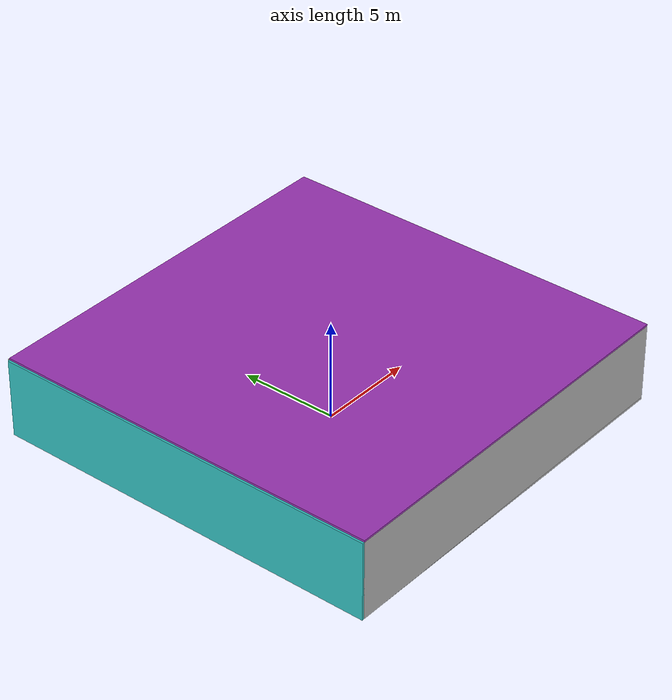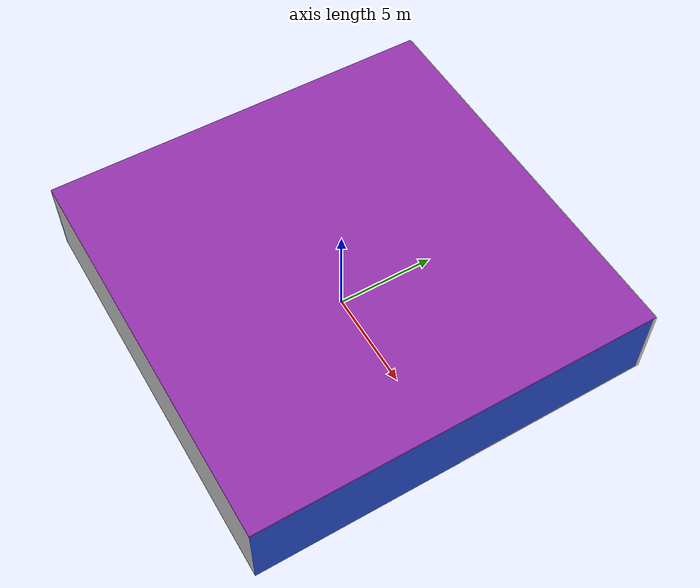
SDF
<sdf version="1.4">
 <world name="default">
  <physics type="ode">
   <max_step_size>0.001</max_step_size>
   <real_time_factor>1</real_time_factor>
   <real_time_update_rate>1000</real_time_update_rate>
   <gravity>0 0 -9.8</gravity>
  </physics>
  <scene><ambient>0.4 0.4 0.4 1</ambient><background>0.7 0.7 0.7 1</background><shadows>1</shadows></scene>
  <model name="Surrounding">
   <static>1</static>
   <link name="Ceiling">
    <collision name="Ceiling_Collision"><geometry><box><size>20 20 0.1</size></box></geometry></collision>
    <visual name="Ceiling_Visual">
     <geometry><box><size>20 20 0.1</size></box></geometry>
     <material>
      <script><uri>file://media/materials/scripts/gazebo.material</uri><name>Gazebo/Purple</name></script>
     </material>
    </visual>
    <pose>0 0 4.05 0 0 0</pose>
   </link>
   <link name="Wall_South">
    <collision name="Wall_South_Collision">
     <geometry><box><size>20 0 4</size></box></geometry>
     <pose>0 0 2 0 -0 0</pose>
    </collision>
    <visual name="Wall_South_Visual">
     <pose>0 0 2 0 -0 0</pose>
     <geometry><box><size>20 0 4</size></box></geometry>
     <material>
      <script><uri>file://media/materials/scripts/gazebo.material</uri><name>Gazebo/PioneerBody</name></script>
     </material>
    </visual>
    <velocity_decay><linear>0</linear><angular>0</angular></velocity_decay>
    <pose>0 -10 0 0 -0 0</pose>
   </link>
   <link name="Wall_East">
    <collision name="Wall_21_Collision">
     <geometry><box><size>20 0 4</size></box></geometry>
     <pose>0 0 2 0 -0 0</pose>
    </collision>
    <visual name="Wall_21_Visual">
     <pose>0 0 2 0 -0 0</pose>
     <geometry><box><size>20 0 4</size></box></geometry>
     <material>
      <script><uri>file://media/materials/scripts/gazebo.material</uri><name>Gazebo/BlueGlow</name></script>
     </material>
    </visual>
    <velocity_decay><linear>0</linear><angular>0</angular></velocity_decay>
    <pose>10 0 0 0 -0 1.5708</pose>
   </link>
   <link name="Wall_North">
    <collision name="Wall_22_Collision">
     <geometry><box><size>20 0.2 4</size></box></geometry>
     <pose>0 0 2 0 -0 0</pose>
    </collision>
    <visual name="Wall_22_Visual">
     <pose>0 0 2 0 -0 0</pose>
     <geometry><box><size>20 0.2 4</size></box></geometry>
     <material>
      <script><uri>file://media/materials/scripts/gazebo.material</uri><name>Gazebo/PaintedWall</name></script>
     </material>
    </visual>
    <velocity_decay><linear>0</linear><angular>0</angular></velocity_decay>
    <pose>0 10 0 0 -0 0</pose>
   </link>
   <link name="Wall_West">
    <collision name="Wall_23_Collision">
     <geometry><box><size>20 0.2 4</size></box></geometry>
     <pose>0 0 2 0 -0 0</pose>
    </collision>
    <visual name="Wall_23_Visual">
     <pose>0 0 2 0 -0 0</pose>
     <geometry><box><size>20 0.2 4</size></box></geometry>
     <material>
      <script><uri>file://media/materials/scripts/gazebo.material</uri><name>Gazebo/TurquoiseGlow</name></script>
     </material>
    </visual>
    <velocity_decay><linear>0</linear><angular>0</angular></velocity_decay>
    <pose>-10 0 0 0 0 -1.5708</pose>
   </link>
   <link name="Ground_link">
    <collision name="collision">
     <pose>0 0 .05 0 -0 0</pose>
     <geometry><box><size>20 20 0.1</size></box></geometry>
    </collision>
    <visual name="visual">
     <pose>0 0 .05 0 -0 0</pose>
     <geometry><box><size>20 20 0.1</size></box></geometry>
     <material>
      <script><uri>file://media/materials/scripts/gazebo.material</uri><name>Gazebo/PioneerBody</name></script>
     </material>
    </visual>
   </link>
   <static>1</static>
  </model>
  <spherical_coordinates>
   <surface_model>EARTH_WGS84</surface_model>
   <latitude_deg>0</latitude_deg>
   <longitude_deg>0</longitude_deg>
   <elevation>0</elevation>
   <heading_deg>0</heading_deg>
  </spherical_coordinates>
  <light name="lightball_0" type="diffuse">
   <diffuse>0.8 0.8 0.8 1</diffuse>
   <specular>0.2 0.2 0.2 1</specular>
   <attenuation>
    <range>100</range>
    <constant>0.7</constant>
    <linear>0.01</linear>
    <quadratic>0.001</quadratic>
   </attenuation>
   <direction>-0.5 0.1 -0.9</direction>
   <pose>1.87752384663 -6.5530298665 2.59787566042 0 0 0</pose>
  </light>
  <light name="lightball_1" type="diffuse">
   <diffuse>0.8 0.8 0.8 1</diffuse>
   <specular>0.2 0.2 0.2 1</specular>
   <attenuation>
    <range>100</range>
    <constant>0.7</constant>
    <linear>0.01</linear>
    <quadratic>0.001</quadratic>
   </attenuation>
   <direction>-0.5 0.1 -0.9</direction>
   <pose>2.14348653918 2.90718740739 1.56462664897 0 0 0</pose>
  </light>
  <light name="lightball_2" type="diffuse">
   <diffuse>0.8 0.8 0.8 1</diffuse>
   <specular>0.2 0.2 0.2 1</specular>
   <attenuation>
    <range>100</range>
    <constant>0.7</constant>
    <linear>0.01</linear>
    <quadratic>0.001</quadratic>
   </attenuation>
   <direction>-0.5 0.1 -0.9</direction>
   <pose>7.44987680226 -9.21964045145 1.70975339228 0 0 0</pose>
  </light>
  <light name="lightball_3" type="diffuse">
   <diffuse>0.8 0.8 0.8 1</diffuse>
   <specular>0.2 0.2 0.2 1</specular>
   <attenuation>
    <range>100</range>
    <constant>0.7</constant>
    <linear>0.01</linear>
    <quadratic>0.001</quadratic>
   </attenuation>
   <direction>-0.5 0.1 -0.9</direction>
   <pose>-9.29923938209 -7.85655158318 1.65049884437 0 0 0</pose>
  </light>
  <light name="lightball_4" type="diffuse">
   <diffuse>0.8 0.8 0.8 1</diffuse>
   <specular>0.2 0.2 0.2 1</specular>
   <attenuation>
    <range>100</range>
    <constant>0.7</constant>
    <linear>0.01</linear>
    <quadratic>0.001</quadratic>
   </attenuation>
   <direction>-0.5 0.1 -0.9</direction>
   <pose>0.994139010014 -5.47295430264 1.23284685113 0 0 0</pose>
  </light>
  <light name="lightball_5" type="diffuse">
   <diffuse>0.8 0.8 0.8 1</diffuse>
   <specular>0.2 0.2 0.2 1</specular>
   <attenuation>
    <range>100</range>
    <constant>0.7</constant>
    <linear>0.01</linear>
    <quadratic>0.001</quadratic>
   </attenuation>
   <direction>-0.5 0.1 -0.9</direction>
   <pose>-2.4220583832 -3.50200167048 0.593623802561 0 0 0</pose>
  </light>
  <light name="lightball_6" type="diffuse">
   <diffuse>0.8 0.8 0.8 1</diffuse>
   <specular>0.2 0.2 0.2 1</specular>
   <attenuation>
    <range>100</range>
    <constant>0.7</constant>
    <linear>0.01</linear>
    <quadratic>0.001</quadratic>
   </attenuation>
   <direction>-0.5 0.1 -0.9</direction>
   <pose>-8.06185334165 6.23790354199 1.59840969384 0 0 0</pose>
  </light>
  <light name="lightball_7" type="diffuse">
   <diffuse>0.8 0.8 0.8 1</diffuse>
   <specular>0.2 0.2 0.2 1</specular>
   <attenuation>
    <range>100</range>
    <constant>0.7</constant>
    <linear>0.01</linear>
    <quadratic>0.001</quadratic>
   </attenuation>
   <direction>-0.5 0.1 -0.9</direction>
   <pose>4.24976268926 8.13290674115 2.37316878941 0 0 0</pose>
  </light>
  <light name="lightball_8" type="diffuse">
   <diffuse>0.8 0.8 0.8 1</diffuse>
   <specular>0.2 0.2 0.2 1</specular>
   <attenuation>
    <range>100</range>
    <constant>0.7</constant>
    <linear>0.01</linear>
    <quadratic>0.001</quadratic>
   </attenuation>
   <direction>-0.5 0.1 -0.9</direction>
   <pose>-8.55331771508 7.1406509373 1.22489406621 0 0 0</pose>
  </light>
  <include><uri>model://table</uri><pose>-7.24096976567 -4.59871401858 0 0 0 1.20606793679</pose></include>
  <include><uri>model://cabinet</uri><pose>-7.16962604723 1.40088798096 0 0 0 3.03444770951</pose></include>
  <include><uri>model://cabinet</uri><pose>-7.03093340584 5.44270992732 0 0 0 2.46584587508</pose></include>
  <include>
   <uri>model://robocup_3Dsim_goal</uri>
   <pose>-0.522115282536 -7.97264016038 0 0 0 1.51679022517</pose>
  </include>
  <include>
   <uri>model://textured_shapes</uri>
   <pose>0.730211313688 -0.736389699383 0 0 0 2.35028607686</pose>
  </include>
  <include>
   <uri>model://construction_cone</uri>
   <pose>2.11663761431 0.799649189105 0 0 0 0.891005037913</pose>
  </include>
  <include>
   <uri>model://construction_cone</uri>
   <pose>4.15211311053 2.30077303549 0 0 0 1.51103902968</pose>
  </include>
  <include><uri>model://cabinet</uri><pose>7.84984942478 6.77205067889 0 0 0 1.66758967632</pose></include>
 </world>
</sdf>

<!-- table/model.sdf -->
<sdf version="1.5">
  <model name="table">
    <static>true</static>
    <link name="link">
      <collision name="surface">
        <pose>0 0 1.0 0 0 0</pose>
        <geometry>
          <box>
            <size>1.5 0.8 0.03</size>
          </box>
        </geometry>
        <surface>
          <friction>
            <ode>
              <mu>0.6</mu>
              <mu2>0.6</mu2>
            </ode>
          </friction>
        </surface>
      </collision>
      <visual name="visual1">
        <pose>0 0 1.0 0 0 0</pose>
        <geometry>
          <box>
            <size>1.5 0.8 0.03</size>
          </box>
        </geometry>
        <material>
          <script>
            <uri>model://media/materials/scripts/gazebo.material</uri>
            <name>Gazebo/Wood</name>
          </script>
        </material>
      </visual>
      <collision name="front_left_leg">
        <pose>0.68 0.38 0.5 0 0 0</pose>
        <geometry>
          <cylinder>
            <radius>0.02</radius>
            <length>1.0</length>
          </cylinder>
        </geometry>
      </collision>
      <visual name="front_left_leg">
        <pose>0.68 0.38 0.5 0 0 0</pose>
        <geometry>
          <cylinder>
            <radius>0.02</radius>
            <length>1.0</length>
          </cylinder>
        </geometry>
        <material>
          <script>
            <uri>model://media/materials/scripts/gazebo.material</uri>
            <name>Gazebo/Grey</name>
          </script>
        </material>
      </visual>
      <collision name="front_right_leg">
        <pose>0.68 -0.38 0.5 0 0 0</pose>
        <geometry>
          <cylinder>
            <radius>0.02</radius>
            <length>1.0</length>
          </cylinder>
        </geometry>
      </collision>
      <visual name="front_right_leg">
        <pose>0.68 -0.38 0.5 0 0 0</pose>
        <geometry>
          <cylinder>
            <radius>0.02</radius>
            <length>1.0</length>
          </cylinder>
        </geometry>
        <material>
          <script>
            <uri>model://media/materials/scripts/gazebo.material</uri>
            <name>Gazebo/Grey</name>
          </script>
        </material>
      </visual>
      <collision name="back_right_leg">
        <pose>-0.68 -0.38 0.5 0 0 0</pose>
        <geometry>
          <cylinder>
            <radius>0.02</radius>
            <length>1.0</length>
          </cylinder>
        </geometry>
      </collision>
      <visual name="back_right_leg">
        <pose>-0.68 -0.38 0.5 0 0 0</pose>
        <geometry>
          <cylinder>
            <radius>0.02</radius>
            <length>1.0</length>
          </cylinder>
        </geometry>
        <material>
          <script>
            <uri>model://media/materials/scripts/gazebo.material</uri>
            <name>Gazebo/Grey</name>
          </script>
        </material>
      </visual>
      <collision name="back_left_leg">
        <pose>-0.68 0.38 0.5 0 0 0</pose>
        <geometry>
          <cylinder>
            <radius>0.02</radius>
            <length>1.0</length>
          </cylinder>
        </geometry>
      </collision>
      <visual name="back_left_leg">
        <pose>-0.68 0.38 0.5 0 0 0</pose>
        <geometry>
          <cylinder>
            <radius>0.02</radius>
            <length>1.0</length>
          </cylinder>
        </geometry>
        <material>
          <script>
            <uri>model://media/materials/scripts/gazebo.material</uri>
            <name>Gazebo/Grey</name>
          </script>
        </material>
      </visual>
    </link>
  </model>
</sdf>

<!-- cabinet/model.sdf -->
<sdf version="1.5">
  <model name="cabinet">
    <static>true</static>
    <link name="cabinet_bottom_plate">
      <inertial>
        <pose>0 0 -1 0 0 0</pose>
        <inertia>
          <ixx>2.050000</ixx>
          <ixy>0</ixy>
          <ixz>0</ixz>
          <iyy>2.050000</iyy>
          <iyz>0</iyz>
          <izz>2.050000</izz>
        </inertia>
        <mass>25.000000</mass>
      </inertial>
      <collision name="cabinet_bottom_plate_geom">
        <pose>0 0 0.010000 0 0 0</pose>
        <geometry>
          <box>
            <size>0.450000 0.450000 0.020000</size>
          </box>
        </geometry>
      </collision>
      <visual name="cabinet_bottom_plate_geom_visual">
        <pose>0 0 0.010000 0 0 0</pose>
        <geometry>
          <box>
            <size>0.450000 0.450000 0.020000</size>
          </box>
        </geometry>
        <material>
          <script>
            <uri>model://media/materials/scripts/gazebo.material</uri>
            <name>Gazebo/Wood</name>
          </script>
        </material>
      </visual>
      <collision name="cabinet_bottom_plate_geom_cabinet_back_plate">
        <pose>0.235000 0 0.510000 0 0 0</pose>
        <geometry>
          <box>
            <size>0.020000 0.450000 1.020000</size>
          </box>
        </geometry>
      </collision>
      <visual name="cabinet_bottom_plate_geom_cabinet_back_plate_visual">
        <pose>0.235000 0 0.510000 0 0 0</pose>
        <geometry>
          <box>
            <size>0.020000 0.450000 1.020000</size>
          </box>
        </geometry>
        <material>
          <script>
            <uri>model://media/materials/scripts/gazebo.material</uri>
            <name>Gazebo/Wood</name>
          </script>
        </material>
      </visual>
      <collision name="cabinet_bottom_plate_geom_cabinet_left_plate">
        <pose>0 0.235000 0.510000 0 0 0</pose>
        <geometry>
          <box>
            <size>0.450000 0.020000 1.020000</size>
          </box>
        </geometry>
      </collision>
      <visual name="cabinet_bottom_plate_geom_cabinet_left_plate_visual">
        <pose>0 0.235000 0.510000 0 0 0</pose>
        <geometry>
          <box>
            <size>0.450000 0.020000 1.020000</size>
          </box>
        </geometry>
        <material>
          <script>
            <uri>model://media/materials/scripts/gazebo.material</uri>
            <name>Gazebo/Wood</name>
          </script>
        </material>
      </visual>
      <collision name="cabinet_bottom_plate_geom_cabinet_middle_plate">
        <pose>0 0 0.510000 0 0 0</pose>
        <geometry>
          <box>
            <size>0.450000 0.450000 0.020000</size>
          </box>
        </geometry>
      </collision>
      <visual name="cabinet_bottom_plate_geom_cabinet_middle_plate_visual">
        <pose>0 0 0.510000 0 0 0</pose>
        <geometry>
          <box>
            <size>0.450000 0.450000 0.020000</size>
          </box>
        </geometry>
        <material>
          <script>
            <uri>model://media/materials/scripts/gazebo.material</uri>
            <name>Gazebo/Wood</name>
          </script>
        </material>
      </visual>
      <collision name="cabinet_bottom_plate_geom_cabinet_right_plate">
        <pose>0 -0.235000 0.510000 0 0 0</pose>
        <geometry>
          <box>
            <size>0.450000 0.020000 1.020000</size>
          </box>
        </geometry>
      </collision>
      <visual name="cabinet_bottom_plate_geom_cabinet_right_plate_visual">
        <pose>0 -0.235000 0.510000 0 0 0</pose>
        <geometry>
          <box>
            <size>0.450000 0.020000 1.020000</size>
          </box>
        </geometry>
        <material>
          <script>
            <uri>model://media/materials/scripts/gazebo.material</uri>
            <name>Gazebo/Wood</name>
          </script>
        </material>
      </visual>
      <collision name="cabinet_bottom_plate_geom_cabinet_top_plate">
        <pose>0 0 1.010000 0 0 0</pose>
        <geometry>
          <box>
            <size>0.450000 0.450000 0.020000</size>
          </box>
        </geometry>
      </collision>
      <visual name="cabinet_bottom_plate_geom_cabinet_top_plate_visual">
        <pose>0 0 1.010000 0 0 0</pose>
        <geometry>
          <box>
            <size>0.450000 0.450000 0.020000</size>
          </box>
        </geometry>
        <material>
          <script>
            <uri>model://media/materials/scripts/gazebo.material</uri>
            <name>Gazebo/Wood</name>
          </script>
        </material>
      </visual>
    </link>
  </model>
</sdf>

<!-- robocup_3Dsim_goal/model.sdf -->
<sdf version="1.5">
  <model name="robocup_3d_goal">
    <static>true</static>
    <link name="left_post">
      <pose>0 1.05 0.45 0 0 0</pose>
      <collision name="collision">
        <geometry>
          <cylinder>
            <radius>0.05</radius>
            <length>0.9</length>
          </cylinder>
        </geometry>
      </collision>
      <visual name="visual">
        <geometry>
          <cylinder>
            <radius>0.05</radius>
            <length>0.9</length>
          </cylinder>
        </geometry>
        <material>
          <script>
            <uri>file://media/materials/scripts/gazebo.material</uri>
            <name>Gazebo/ZincYellow</name>
          </script>
        </material>
      </visual>
    </link>
    <link name="left_support_horiz_lower">
      <pose>0.30 1.05 0.01 0 0 0</pose>
      <collision name="collision">
        <geometry>
          <box>
            <size>0.50 0.02 0.02</size>
          </box>
        </geometry>
      </collision>
      <visual name="visual">
        <geometry>
          <box>
            <size>0.50 0.02 0.02</size>
          </box>
        </geometry>
        <material>
          <script>
            <uri>file://media/materials/scripts/gazebo.material</uri>
            <name>Gazebo/White</name>
          </script>
        </material>
      </visual>
    </link>
    <link name="left_support_horiz_upper">
      <pose>0.30 1.05 0.79 0 0 0</pose>
      <collision name="collision">
        <geometry>
          <box>
            <size>0.50 0.02 0.02</size>
          </box>
        </geometry>
      </collision>
      <visual name="visual">
        <geometry>
          <box>
            <size>0.50 0.02 0.02</size>
          </box>
        </geometry>
        <material>
          <script>
            <uri>file://media/materials/scripts/gazebo.material</uri>
            <name>Gazebo/White</name>
          </script>
        </material>
      </visual>
    </link>
    <link name="left_support_vertical">
      <pose>0.56 1.05 0.4 0 1.5708 0</pose>
      <collision name="collision">
        <geometry>
          <box>
            <size>0.80 0.02 0.02</size>
          </box>
        </geometry>
      </collision>
      <visual name="visual">
        <geometry>
          <box>
            <size>0.80 0.02 0.02</size>
          </box>
        </geometry>
        <material>
          <script>
            <uri>file://media/materials/scripts/gazebo.material</uri>
            <name>Gazebo/White</name>
          </script>
        </material>
      </visual>
    </link>
    <link name="right_support_horiz_lower">
      <pose>0.30 -1.05 0.01 0 0 0</pose>
      <collision name="collision">
        <geometry>
          <box>
            <size>0.50 0.02 0.02</size>
          </box>
        </geometry>
      </collision>
      <visual name="visual">
        <geometry>
          <box>
            <size>0.50 0.02 0.02</size>
          </box>
        </geometry>
        <material>
          <script>
            <uri>file://media/materials/scripts/gazebo.material</uri>
            <name>Gazebo/White</name>
          </script>
        </material>
      </visual>
    </link>
    <link name="right_support_horiz_upper">
      <pose>0.30 -1.05 0.79 0 0 0</pose>
      <collision name="collision">
        <geometry>
          <box>
            <size>0.50 0.02 0.02</size>
          </box>
        </geometry>
      </collision>
      <visual name="visual">
        <geometry>
          <box>
            <size>0.50 0.02 0.02</size>
          </box>
        </geometry>
        <material>
          <script>
            <uri>file://media/materials/scripts/gazebo.material</uri>
            <name>Gazebo/White</name>
          </script>
        </material>
      </visual>
    </link>
    <link name="right_support_vertical">
      <pose>0.56 -1.05 0.4 0 1.5708 0</pose>
      <collision name="collision">
        <geometry>
          <box>
            <size>0.80 0.02 0.02</size>
          </box>
        </geometry>
      </collision>
      <visual name="visual">
        <geometry>
          <box>
            <size>0.80 0.02 0.02</size>
          </box>
        </geometry>
        <material>
          <script>
            <uri>file://media/materials/scripts/gazebo.material</uri>
            <name>Gazebo/White</name>
          </script>
        </material>
      </visual>
    </link>
    <link name="center_support_horiz_lower">
      <pose>0.56 0 0.01 0 1.5708 0</pose>
      <collision name="collision">
        <geometry>
          <box>
            <size>0.02 2.08 0.02</size>
          </box>
        </geometry>
      </collision>
      <visual name="visual">
        <geometry>
          <box>
            <size>0.02 2.08 0.02</size>
          </box>
        </geometry>
        <material>
          <script>
            <uri>file://media/materials/scripts/gazebo.material</uri>
            <name>Gazebo/White</name>
          </script>
        </material>
      </visual>
    </link>
    <link name="center_support_horiz_upper">
      <pose>0.56 0 0.79 0 1.5708 0</pose>
      <collision name="collision">
        <geometry>
          <box>
            <size>0.02 2.08 0.02</size>
          </box>
        </geometry>
      </collision>
      <visual name="visual">
        <geometry>
          <box>
            <size>0.02 2.08 0.02</size>
          </box>
        </geometry>
        <material>
          <script>
            <uri>file://media/materials/scripts/gazebo.material</uri>
            <name>Gazebo/White</name>
          </script>
        </material>
      </visual>
    </link>
    <link name="right_post">
      <pose>0 -1.05 0.45 0 0 0</pose>
      <collision name="collision">
        <geometry>
          <cylinder>
            <radius>0.05</radius>
            <length>0.9</length>
          </cylinder>
        </geometry>
      </collision>
      <visual name="visual">
        <geometry>
          <cylinder>
            <radius>0.05</radius>
            <length>0.9</length>
          </cylinder>
        </geometry>
        <material>
          <script>
            <uri>file://media/materials/scripts/gazebo.material</uri>
            <name>Gazebo/ZincYellow</name>
          </script>
        </material>
      </visual>
    </link>
    <link name="crossbar">
      <pose>0 0 0.85 1.57 1.57 0</pose>
      <collision name="collision">
        <geometry>
          <cylinder>
            <radius>0.05</radius>
            <length>2.0</length>
          </cylinder>
        </geometry>
      </collision>
      <visual name="visual">
        <geometry>
          <cylinder>
            <radius>0.05</radius>
            <length>2.0</length>
          </cylinder>
        </geometry>
        <material>
          <script>
            <uri>file://media/materials/scripts/gazebo.material</uri>
            <name>Gazebo/ZincYellow</name>
          </script>
        </material>
      </visual>
    </link>
    <link name="center_net">
      <pose>0.56 0 0.40 0 0 0</pose>
      <collision name="collision">
        <geometry>
          <box>
            <size>0.01 2.1 0.80</size>
          </box>
        </geometry>
      </collision>
      <visual name="visual">
        <geometry>
          <box>
            <size>0.01 2.1 0.80</size>
          </box>
        </geometry>
        <material>
          <script>
            <uri>model://../model_source/models/robocup09_spl_field/materials/scripts/</uri>
            <uri>model://../model_source/models/robocup09_spl_field/materials/textures/</uri>
            <name>RoboCup/Net</name>
          </script>
        </material>
      </visual>
    </link>
    <link name="left_net">
      <pose>0.30 1.05 0.40 0 0 0</pose>
      <collision name="collision">
        <geometry>
          <box>
            <size>0.50 0.01 0.76</size>
          </box>
        </geometry>
      </collision>
      <visual name="visual">
        <geometry>
          <box>
            <size>0.50 0.01 0.76</size>
          </box>
        </geometry>
        <material>
          <script>
            <uri>model://../model_source/models/robocup09_spl_field/materials/scripts/</uri>
            <uri>model://../model_source/models/robocup09_spl_field/materials/textures/</uri>
            <name>RoboCup/Net</name>
          </script>
        </material>
      </visual>
    </link>
    <link name="right_net">
      <pose>0.30 -1.05 0.40 0 0 0</pose>
      <collision name="collision">
        <geometry>
          <box>
            <size>0.50 0.01 0.76</size>
          </box>
        </geometry>
      </collision>
      <visual name="visual">
        <geometry>
          <box>
            <size>0.50 0.01 0.76</size>
          </box>
        </geometry>
        <material>
          <script>
            <uri>model://../model_source/models/robocup09_spl_field/materials/scripts/</uri>
            <uri>model://../model_source/models/robocup09_spl_field/materials/textures/</uri>
            <name>RoboCup/Net</name>
          </script>
        </material>
      </visual>
    </link>
  </model>
</sdf>

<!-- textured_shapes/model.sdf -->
<sdf version="1.6">
  <model name="textured_shapes">
    <pose>0 0 0.5 0 0 0</pose>
    <link name="box">
      <pose>0 -1.5 0 0 0 0</pose>
      <collision name="collision">
        <geometry>
          <box>
            <size>1 1 1</size>
          </box>
        </geometry>
      </collision>
      <visual name="visual">
        <geometry>
          <box>
            <size>1 1 1</size>
          </box>
        </geometry>
        <material>
          <script>
            <uri>model://../model_source/models/textured_shapes/materials/scripts</uri>
            <uri>model://../model_source/models/textured_shapes/materials/textures</uri>
            <name>TexturedShape/Squares</name>
          </script>
        </material>
      </visual>
    </link>
    <link name="sphere">
      <collision name="collision">
        <geometry>
          <sphere>
            <radius>0.5</radius>
          </sphere>
        </geometry>
      </collision>
      <visual name="visual">
        <geometry>
          <sphere>
            <radius>0.5</radius>
          </sphere>
        </geometry>
        <material>
          <script>
            <uri>model://../model_source/models/textured_shapes/materials/scripts</uri>
            <uri>model://../model_source/models/textured_shapes/materials/textures</uri>
            <name>TexturedShape/Squares</name>
          </script>
        </material>
      </visual>
    </link>
    <link name="cylinder">
      <pose>0 1.5 0 0 0 0</pose>
      <collision name="collision">
        <geometry>
          <cylinder>
            <radius>0.5</radius>
            <length>1</length>
          </cylinder>
        </geometry>
      </collision>
      <visual name="visual">
        <geometry>
          <cylinder>
            <radius>0.5</radius>
            <length>1</length>
          </cylinder>
        </geometry>
        <material>
          <script>
            <uri>model://../model_source/models/textured_shapes/materials/scripts</uri>
            <uri>model://../model_source/models/textured_shapes/materials/textures</uri>
            <name>TexturedShape/Squares</name>
          </script>
        </material>
      </visual>
    </link>
  </model>
</sdf>

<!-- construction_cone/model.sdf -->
<sdf version="1.5">
  <model name="Construction Cone">
    <link name="link">
      <collision name="collision">
        <geometry>
          <mesh>
            <scale>10 10 10</scale>
            <uri>file://isr-testbed/construction_cone/meshes/construction_cone.dae</uri>
          </mesh>
        </geometry>
      </collision>
      <visual name="visual">
        <geometry>
          <mesh>
            <scale>10 10 10</scale>
            <uri>file://isr-testbed/construction_cone/meshes/construction_cone.dae</uri>
          </mesh>
        </geometry>
      </visual>
    </link>
  </model>
</sdf>
